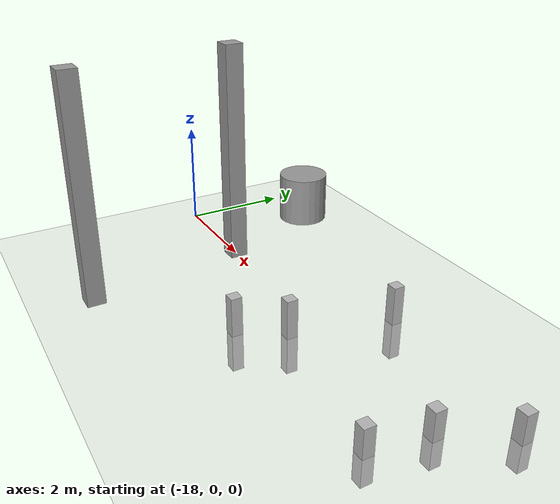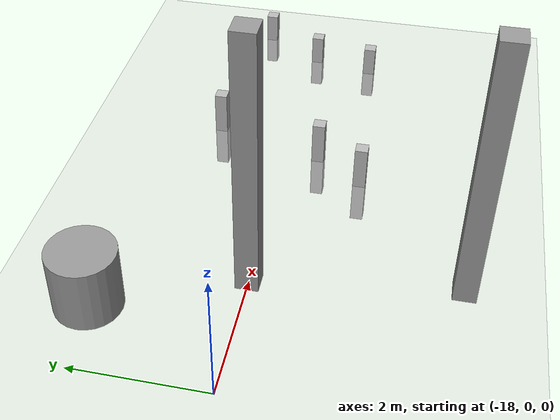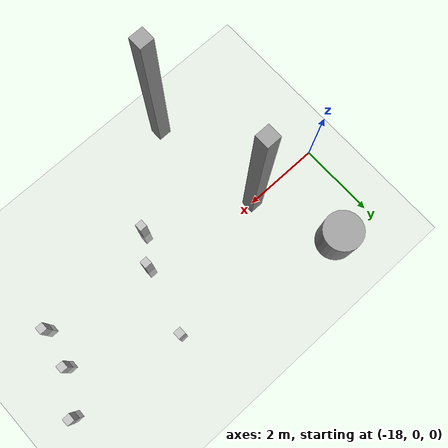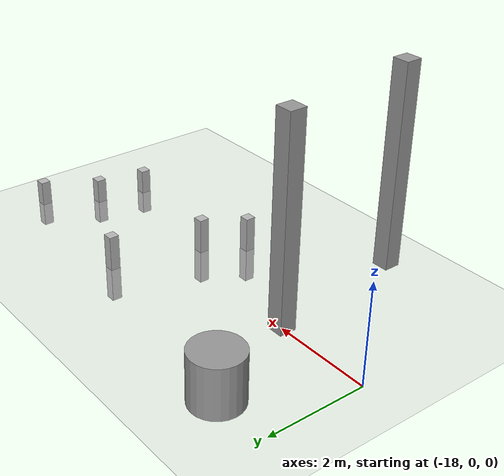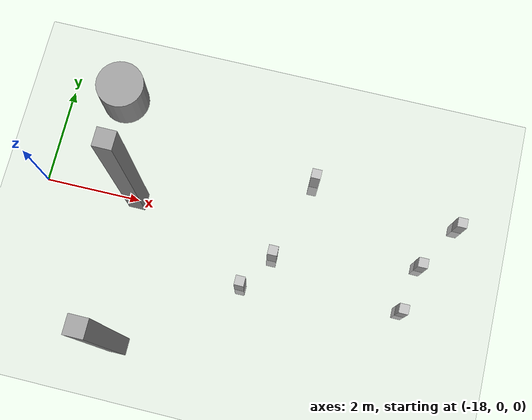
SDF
<sdf version="1.7">
 <world name="default">
  <plugin name="hello_world" filename="libhello_world.so"/>
  <light name="sun" type="directional">
   <pose>0 0 10 0 -0 0</pose>
   <diffuse>0.8 0.8 0.8 1</diffuse>
   <specular>0.2 0.2 0.2 1</specular>
   <attenuation>
    <range>1000</range>
    <constant>0.9</constant>
    <linear>0.01</linear>
    <quadratic>0.001</quadratic>
   </attenuation>
   <direction>-0.5 0.1 -0.9</direction>
   <spot><inner_angle>0</inner_angle><outer_angle>0</outer_angle><falloff>0</falloff></spot>
  </light>
  <model name="ground_plane">
   <static>1</static>
   <link name="link">
    <collision name="collision">
     <geometry><plane><normal>0 0 1</normal><size>100 100</size></plane></geometry>
     <surface>
      <contact><collide_bitmask>65535</collide_bitmask></contact>
      <friction><ode><mu>100</mu><mu2>50</mu2></ode></friction>
     </surface>
    </collision>
    <visual name="visual">
     <cast_shadows>0</cast_shadows>
     <geometry><plane><normal>0 0 1</normal><size>100 100</size></plane></geometry>
     <material>
      <script><uri>file://media/materials/scripts/gazebo.material</uri><name>Gazebo/Grey</name></script>
     </material>
    </visual>
   </link>
  </model>
  <gravity>0 0 -9.8</gravity>
  <magnetic_field>6e-06 2.3e-05 -4.2e-05</magnetic_field>
  <atmosphere type="adiabatic"/>
  <physics type="ode">
   <max_step_size>0.001</max_step_size>
   <real_time_factor>1</real_time_factor>
   <real_time_update_rate>1000</real_time_update_rate>
  </physics>
  <scene><ambient>0.4 0.4 0.4 1</ambient><background>0.7 0.7 0.7 1</background><shadows>1</shadows></scene>
  <spherical_coordinates>
   <surface_model>EARTH_WGS84</surface_model>
   <latitude_deg>0</latitude_deg>
   <longitude_deg>0</longitude_deg>
   <elevation>0</elevation>
   <heading_deg>0</heading_deg>
  </spherical_coordinates>
  <model name="unit_cylinder_1">
   <pose>-16.8605 2.08124 0.499994 -3e-06 -1e-06 -0</pose>
   <link name="link">
    <inertial>
     <mass>1</mass>
     <inertia><ixx>0.145833</ixx><ixy>0</ixy><ixz>0</ixz><iyy>0.145833</iyy><iyz>0</iyz><izz>0.125</izz></inertia>
    </inertial>
    <collision name="collision">
     <geometry><cylinder><radius>0.5</radius><length>1</length></cylinder></geometry>
    </collision>
    <visual name="visual">
     <geometry><cylinder><radius>0.5</radius><length>1</length></cylinder></geometry>
     <material>
      <script><name>Gazebo/Grey</name><uri>file://media/materials/scripts/gazebo.material</uri></script>
     </material>
    </visual>
   </link>
  </model>
  <model name="box">
   <pose>-10 0 0 0 0 0</pose>
   <link name="link">
    <collision name="collision"><geometry><box><size>0.2 0.2 0.05</size></box></geometry></collision>
    <visual name="visual"><geometry><box><size>0.2 0.2 1</size></box></geometry></visual>
   </link>
   <plugin name="move_obj" filename="libmove_obj.so"/>
  </model>
  <model name="box1">
   <pose>-9.377 1 0 0 0 0</pose>
   <link name="link">
    <collision name="collision"><geometry><box><size>0.2 0.2 0.05</size></box></geometry></collision>
    <visual name="visual"><geometry><box><size>0.2 0.2 1</size></box></geometry></visual>
   </link>
   <plugin name="move_obj" filename="libmove_obj.so"/>
  </model>
  <model name="box2">
   <pose>-10.2 -1 0 0 0 0</pose>
   <link name="link">
    <collision name="collision"><geometry><box><size>0.2 0.2 0.05</size></box></geometry></collision>
    <visual name="visual"><geometry><box><size>0.2 0.2 1</size></box></geometry></visual>
   </link>
   <plugin name="move_obj" filename="libmove_obj.so"/>
  </model>
  <model name="box3">
   <pose>-13 -0.5 0 0 0 0</pose>
   <link name="link">
    <collision name="collision"><geometry><box><size>0.2 0.2 0.05</size></box></geometry></collision>
    <visual name="visual"><geometry><box><size>0.2 0.2 1.4</size></box></geometry></visual>
   </link>
   <plugin name="move_obj" filename="libmove_obj.so"/>
  </model>
  <model name="box4">
   <pose>-12.5 1.25 0 0 0 0</pose>
   <link name="link">
    <collision name="collision"><geometry><box><size>0.2 0.2 0.05</size></box></geometry></collision>
    <visual name="visual"><geometry><box><size>0.2 0.2 1.4</size></box></geometry></visual>
   </link>
   <plugin name="move_obj" filename="libmove_obj.so"/>
  </model>
  <model name="box5">
   <pose>-13.5 -1.25 0 0 0 0</pose>
   <link name="link">
    <collision name="collision"><geometry><box><size>0.2 0.2 0.05</size></box></geometry></collision>
    <visual name="visual"><geometry><box><size>0.2 0.2 1.4</size></box></geometry></visual>
   </link>
   <plugin name="move_obj" filename="libmove_obj.so"/>
  </model>
  <light name="user_spot_light_0" type="spot">
   <pose>-15.8293 12.7519 1 0 -0 0</pose>
   <diffuse>0.5 0.5 0.5 1</diffuse>
   <specular>0.1 0.1 0.1 1</specular>
   <direction>0 0 -1</direction>
   <attenuation>
    <range>20</range>
    <constant>0.5</constant>
    <linear>0.01</linear>
    <quadratic>0.001</quadratic>
   </attenuation>
   <cast_shadows>0</cast_shadows>
   <spot><inner_angle>0.6</inner_angle><outer_angle>1</outer_angle><falloff>1</falloff></spot>
  </light>
  <light name="user_spot_light_1" type="spot">
   <pose>-0.982217 1.39334 1 0 -0 0</pose>
   <diffuse>0.5 0.5 0.5 1</diffuse>
   <specular>0.1 0.1 0.1 1</specular>
   <direction>0 0 -1</direction>
   <attenuation>
    <range>20</range>
    <constant>0.5</constant>
    <linear>0.01</linear>
    <quadratic>0.001</quadratic>
   </attenuation>
   <cast_shadows>0</cast_shadows>
   <spot><inner_angle>0.6</inner_angle><outer_angle>1</outer_angle><falloff>1</falloff></spot>
  </light>
  <model name="unit_box_clone_29">
   <link name="link">
    <inertial>
     <mass>2.4304</mass>
     <inertia><ixx>3.54705</ixx><ixy>0</ixy><ixz>0</ixz><iyy>3.54798</iyy><iyz>0</iyz><izz>0.047215</izz></inertia>
    </inertial>
    <visual name="visual">
     <geometry><box><size>0.344761 0.338027 4.17123</size></box></geometry>
     <material>
      <script><name>Gazebo/Grey</name><uri>file://media/materials/scripts/gazebo.material</uri></script>
      <shader type="pixel"><normal_map>__default__</normal_map></shader>
      <ambient>0.3 0.3 0.3 1</ambient>
      <diffuse>0.7 0.7 0.7 1</diffuse>
      <specular>0.01 0.01 0.01 1</specular>
      <emissive>0 0 0 1</emissive>
     </material>
    </visual>
    <collision name="collision">
     <geometry><box><size>0.344761 0.338027 4.17123</size></box></geometry>
     <surface>
      <friction>
       <ode><mu>1</mu><mu2>1</mu2><fdir1>0 0 0</fdir1><slip1>0</slip1><slip2>0</slip2></ode>
       <torsional>
        <coefficient>1</coefficient>
        <patch_radius>0</patch_radius>
        <surface_radius>0</surface_radius>
        <use_patch_radius>1</use_patch_radius>
        <ode><slip>0</slip></ode>
       </torsional>
      </friction>
      <bounce><restitution_coefficient>0</restitution_coefficient><threshold>1e+06</threshold></bounce>
      <contact>
       <collide_without_contact>0</collide_without_contact>
       <collide_without_contact_bitmask>1</collide_without_contact_bitmask>
       <collide_bitmask>1</collide_bitmask>
       <ode>
        <soft_cfm>0</soft_cfm>
        <soft_erp>0.2</soft_erp>
        <kp>1e+13</kp>
        <kd>1</kd>
        <max_vel>0.01</max_vel>
        <min_depth>0</min_depth>
       </ode>
       <bullet>
        <split_impulse>1</split_impulse>
        <split_impulse_penetration_threshold>-0.01</split_impulse_penetration_threshold>
        <soft_cfm>0</soft_cfm>
        <soft_erp>0.2</soft_erp>
        <kp>1e+13</kp>
        <kd>1</kd>
       </bullet>
      </contact>
     </surface>
    </collision>
   </link>
   <static>0</static>
   <pose>-15.5882 -2.99933 2.08562 1e-06 6e-06 0.002589</pose>
  </model>
  <model name="unit_box_clone_31">
   <link name="link">
    <inertial>
     <mass>2.4304</mass>
     <inertia><ixx>3.54705</ixx><ixy>0</ixy><ixz>0</ixz><iyy>3.54798</iyy><iyz>0</iyz><izz>0.047215</izz></inertia>
    </inertial>
    <visual name="visual">
     <geometry><box><size>0.344761 0.338027 4.17123</size></box></geometry>
     <material>
      <script><name>Gazebo/Grey</name><uri>file://media/materials/scripts/gazebo.material</uri></script>
      <shader type="pixel"><normal_map>__default__</normal_map></shader>
      <ambient>0.3 0.3 0.3 1</ambient>
      <diffuse>0.7 0.7 0.7 1</diffuse>
      <specular>0.01 0.01 0.01 1</specular>
      <emissive>0 0 0 1</emissive>
     </material>
    </visual>
    <collision name="collision">
     <geometry><box><size>0.344761 0.338027 4.17123</size></box></geometry>
     <surface>
      <friction>
       <ode><mu>1</mu><mu2>1</mu2><fdir1>0 0 0</fdir1><slip1>0</slip1><slip2>0</slip2></ode>
       <torsional>
        <coefficient>1</coefficient>
        <patch_radius>0</patch_radius>
        <surface_radius>0</surface_radius>
        <use_patch_radius>1</use_patch_radius>
        <ode><slip>0</slip></ode>
       </torsional>
      </friction>
      <bounce><restitution_coefficient>0</restitution_coefficient><threshold>1e+06</threshold></bounce>
      <contact>
       <collide_without_contact>0</collide_without_contact>
       <collide_without_contact_bitmask>1</collide_without_contact_bitmask>
       <collide_bitmask>1</collide_bitmask>
       <ode>
        <soft_cfm>0</soft_cfm>
        <soft_erp>0.2</soft_erp>
        <kp>1e+13</kp>
        <kd>1</kd>
        <max_vel>0.01</max_vel>
        <min_depth>0</min_depth>
       </ode>
       <bullet>
        <split_impulse>1</split_impulse>
        <split_impulse_penetration_threshold>-0.01</split_impulse_penetration_threshold>
        <soft_cfm>0</soft_cfm>
        <soft_erp>0.2</soft_erp>
        <kp>1e+13</kp>
        <kd>1</kd>
       </bullet>
      </contact>
     </surface>
    </collision>
   </link>
   <static>0</static>
   <pose>-15.9999 -0.000173 2.08562 -1e-06 1.6e-05 -0.001123</pose>
  </model>
 </world>
</sdf>
